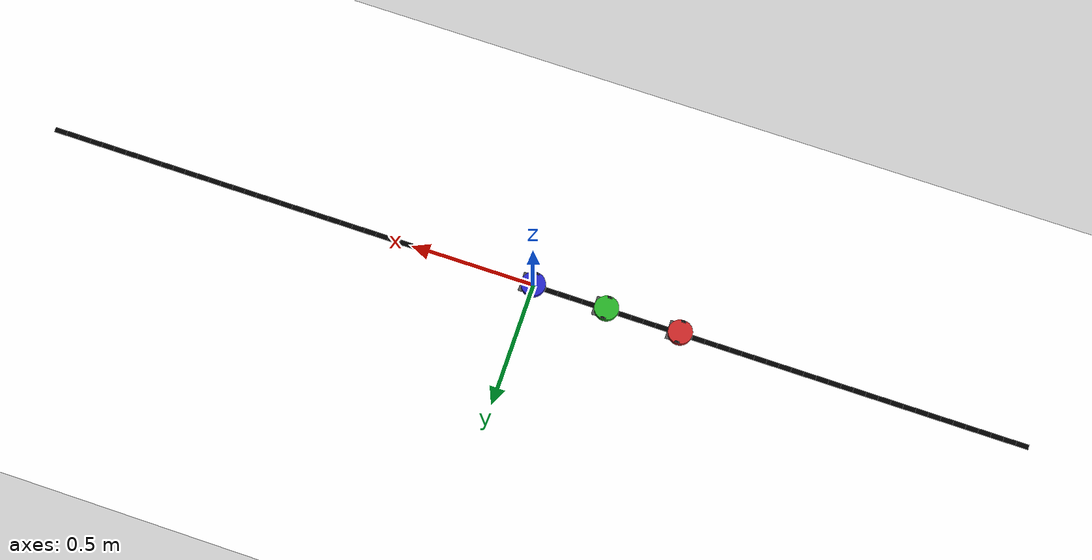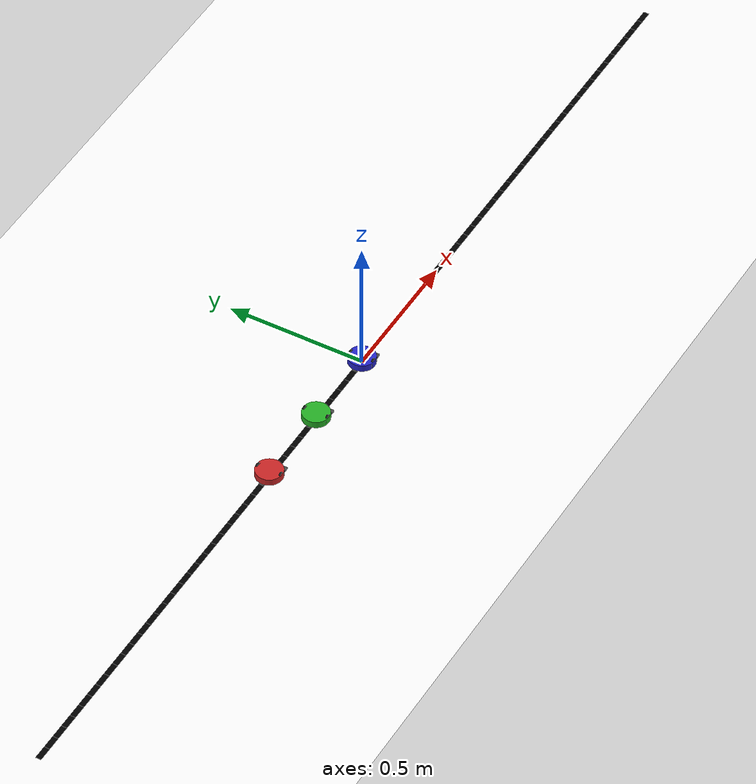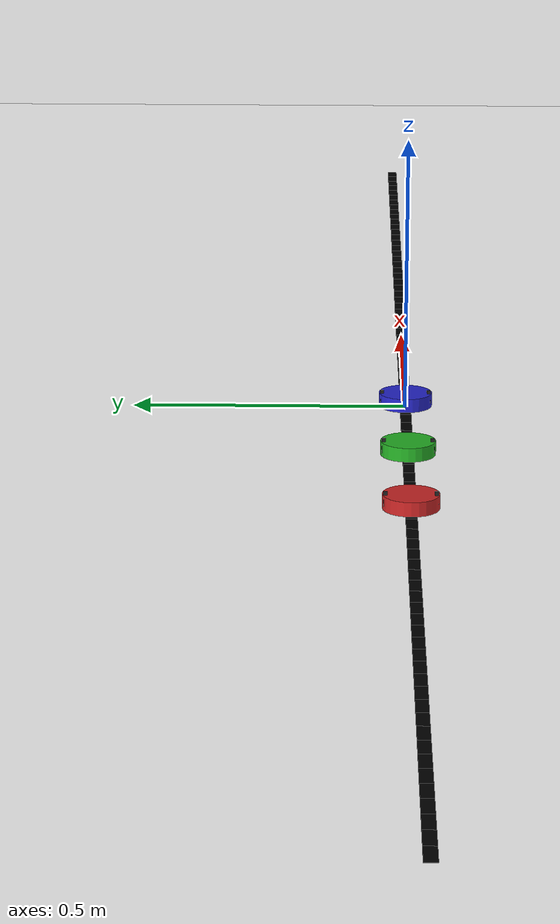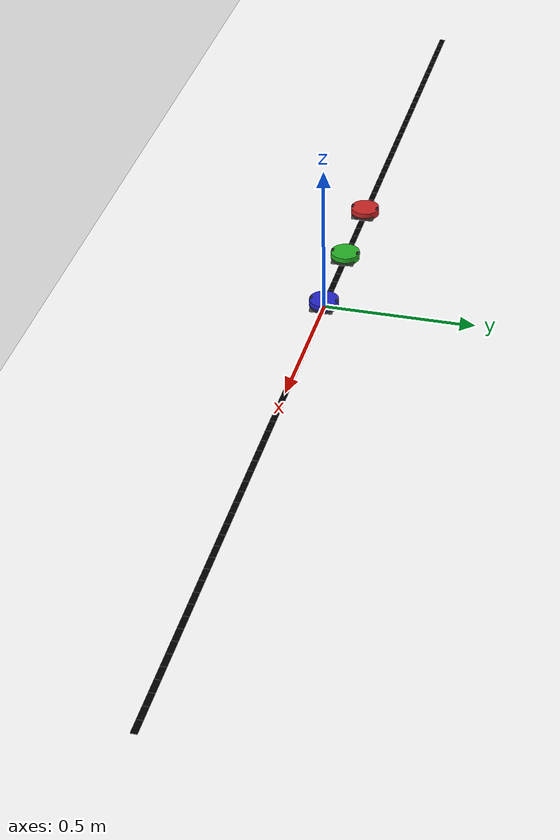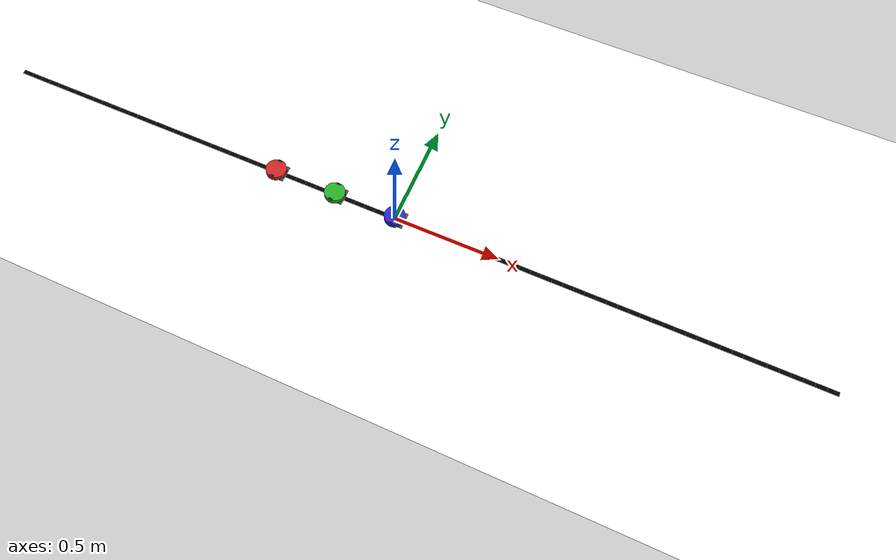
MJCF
<mujoco model="platooning_pololu">

  <compiler angle="radian" inertiafromgeom="true"/>

  <option timestep="0.002"
          gravity="0 0 -9.81"
          integrator="RK4"
          cone="elliptic"/>

  <default>
    <joint damping="0.001" frictionloss="0.0005"/>
    <geom condim="4" friction="0.8 0.01 0.01" solref="0.004 1" solimp="0.99 0.999 0.0001"/>
  </default>

  <!-- ───────── ASSETS ───────── -->
  <asset>
    <material name="ground_mat"  rgba="1 1 1 1" reflectance="0.15"/>
    <material name="line_mat"    rgba="0 0 0 1"/>
    <material name="chassis1"    rgba="0.15 0.15 0.8 1"/>   <!-- blue  — leader   -->
    <material name="chassis2"    rgba="0.15 0.7  0.15 1"/>  <!-- green — follower1 -->
    <material name="chassis3"    rgba="0.8  0.15 0.15 1"/>  <!-- red   — follower2 -->
    <material name="wheel_mat"   rgba="0.1  0.1  0.1  1"/>
    <material name="caster_mat"  rgba="0.7  0.7  0.7  1"/>
    <material name="bumper_mat"  rgba="0.2  0.2  0.2  0.8"/>
  </asset>

  <!-- ───────── WORLD ───────── -->
  <worldbody>

    <geom name="floor" type="plane" size="5 5 0.1"
          material="ground_mat" friction="0.8 0.01 0.01" condim="3"/>

    <!-- ── LIGHTS ─────────────────────────────────────────────────────── -->
    <!-- Directional sun-like light from above-front -->
    <light name="sun" directional="true" pos="0 0 3"
           dir="0.2 -0.3 -1" diffuse="0.8 0.8 0.8" specular="0.2 0.2 0.2"
           castshadow="true"/>
    <!-- Ambient fill light from above to avoid harsh shadows -->
    <light name="fill" directional="true" pos="0 0 2"
           dir="-0.1 0.2 -1" diffuse="0.4 0.4 0.4" specular="0 0 0"
           castshadow="false"/>

    <geom type="box" size="0.0250 0.0100 0.0005" pos="-1.9750 0.0 0.0005" material="line_mat" contype="0" conaffinity="0"/>
    <geom type="box" size="0.0250 0.0100 0.0005" pos="-1.9250 0.0 0.0005" material="line_mat" contype="0" conaffinity="0"/>
    <geom type="box" size="0.0250 0.0100 0.0005" pos="-1.8750 0.0 0.0005" material="line_mat" contype="0" conaffinity="0"/>
    <geom type="box" size="0.0250 0.0100 0.0005" pos="-1.8250 0.0 0.0005" material="line_mat" contype="0" conaffinity="0"/>
    <geom type="box" size="0.0250 0.0100 0.0005" pos="-1.7750 0.0 0.0005" material="line_mat" contype="0" conaffinity="0"/>
    <geom type="box" size="0.0250 0.0100 0.0005" pos="-1.7250 0.0 0.0005" material="line_mat" contype="0" conaffinity="0"/>
    <geom type="box" size="0.0250 0.0100 0.0005" pos="-1.6750 0.0 0.0005" material="line_mat" contype="0" conaffinity="0"/>
    <geom type="box" size="0.0250 0.0100 0.0005" pos="-1.6250 0.0 0.0005" material="line_mat" contype="0" conaffinity="0"/>
    <geom type="box" size="0.0250 0.0100 0.0005" pos="-1.5750 0.0 0.0005" material="line_mat" contype="0" conaffinity="0"/>
    <geom type="box" size="0.0250 0.0100 0.0005" pos="-1.5250 0.0 0.0005" material="line_mat" contype="0" conaffinity="0"/>
    <geom type="box" size="0.0250 0.0100 0.0005" pos="-1.4750 0.0 0.0005" material="line_mat" contype="0" conaffinity="0"/>
    <geom type="box" size="0.0250 0.0100 0.0005" pos="-1.4250 0.0 0.0005" material="line_mat" contype="0" conaffinity="0"/>
    <geom type="box" size="0.0250 0.0100 0.0005" pos="-1.3750 0.0 0.0005" material="line_mat" contype="0" conaffinity="0"/>
    <geom type="box" size="0.0250 0.0100 0.0005" pos="-1.3250 0.0 0.0005" material="line_mat" contype="0" conaffinity="0"/>
    <geom type="box" size="0.0250 0.0100 0.0005" pos="-1.2750 0.0 0.0005" material="line_mat" contype="0" conaffinity="0"/>
    <geom type="box" size="0.0250 0.0100 0.0005" pos="-1.2250 0.0 0.0005" material="line_mat" contype="0" conaffinity="0"/>
    <geom type="box" size="0.0250 0.0100 0.0005" pos="-1.1750 0.0 0.0005" material="line_mat" contype="0" conaffinity="0"/>
    <geom type="box" size="0.0250 0.0100 0.0005" pos="-1.1250 0.0 0.0005" material="line_mat" contype="0" conaffinity="0"/>
    <geom type="box" size="0.0250 0.0100 0.0005" pos="-1.0750 0.0 0.0005" material="line_mat" contype="0" conaffinity="0"/>
    <geom type="box" size="0.0250 0.0100 0.0005" pos="-1.0250 0.0 0.0005" material="line_mat" contype="0" conaffinity="0"/>
    <geom type="box" size="0.0250 0.0100 0.0005" pos="-0.9750 0.0 0.0005" material="line_mat" contype="0" conaffinity="0"/>
    <geom type="box" size="0.0250 0.0100 0.0005" pos="-0.9250 0.0 0.0005" material="line_mat" contype="0" conaffinity="0"/>
    <geom type="box" size="0.0250 0.0100 0.0005" pos="-0.8750 0.0 0.0005" material="line_mat" contype="0" conaffinity="0"/>
    <geom type="box" size="0.0250 0.0100 0.0005" pos="-0.8250 0.0 0.0005" material="line_mat" contype="0" conaffinity="0"/>
    <geom type="box" size="0.0250 0.0100 0.0005" pos="-0.7750 0.0 0.0005" material="line_mat" contype="0" conaffinity="0"/>
    <geom type="box" size="0.0250 0.0100 0.0005" pos="-0.7250 0.0 0.0005" material="line_mat" contype="0" conaffinity="0"/>
    <geom type="box" size="0.0250 0.0100 0.0005" pos="-0.6750 0.0 0.0005" material="line_mat" contype="0" conaffinity="0"/>
    <geom type="box" size="0.0250 0.0100 0.0005" pos="-0.6250 0.0 0.0005" material="line_mat" contype="0" conaffinity="0"/>
    <geom type="box" size="0.0250 0.0100 0.0005" pos="-0.5750 0.0 0.0005" material="line_mat" contype="0" conaffinity="0"/>
    <geom type="box" size="0.0250 0.0100 0.0005" pos="-0.5250 0.0 0.0005" material="line_mat" contype="0" conaffinity="0"/>
    <geom type="box" size="0.0250 0.0100 0.0005" pos="-0.4750 0.0 0.0005" material="line_mat" contype="0" conaffinity="0"/>
    <geom type="box" size="0.0250 0.0100 0.0005" pos="-0.4250 0.0 0.0005" material="line_mat" contype="0" conaffinity="0"/>
    <geom type="box" size="0.0250 0.0100 0.0005" pos="-0.3750 0.0 0.0005" material="line_mat" contype="0" conaffinity="0"/>
    <geom type="box" size="0.0250 0.0100 0.0005" pos="-0.3250 0.0 0.0005" material="line_mat" contype="0" conaffinity="0"/>
    <geom type="box" size="0.0250 0.0100 0.0005" pos="-0.2750 0.0 0.0005" material="line_mat" contype="0" conaffinity="0"/>
    <geom type="box" size="0.0250 0.0100 0.0005" pos="-0.2250 0.0 0.0005" material="line_mat" contype="0" conaffinity="0"/>
    <geom type="box" size="0.0250 0.0100 0.0005" pos="-0.1750 0.0 0.0005" material="line_mat" contype="0" conaffinity="0"/>
    <geom type="box" size="0.0250 0.0100 0.0005" pos="-0.1250 0.0 0.0005" material="line_mat" contype="0" conaffinity="0"/>
    <geom type="box" size="0.0250 0.0100 0.0005" pos="-0.0750 0.0 0.0005" material="line_mat" contype="0" conaffinity="0"/>
    <geom type="box" size="0.0250 0.0100 0.0005" pos="-0.0250 0.0 0.0005" material="line_mat" contype="0" conaffinity="0"/>
    <geom type="box" size="0.0250 0.0100 0.0005" pos="0.0250 0.0 0.0005" material="line_mat" contype="0" conaffinity="0"/>
    <geom type="box" size="0.0250 0.0100 0.0005" pos="0.0750 0.0 0.0005" material="line_mat" contype="0" conaffinity="0"/>
    <geom type="box" size="0.0250 0.0100 0.0005" pos="0.1250 0.0 0.0005" material="line_mat" contype="0" conaffinity="0"/>
    <geom type="box" size="0.0250 0.0100 0.0005" pos="0.1750 0.0 0.0005" material="line_mat" contype="0" conaffinity="0"/>
    <geom type="box" size="0.0250 0.0100 0.0005" pos="0.2250 0.0 0.0005" material="line_mat" contype="0" conaffinity="0"/>
    <geom type="box" size="0.0250 0.0100 0.0005" pos="0.2750 0.0 0.0005" material="line_mat" contype="0" conaffinity="0"/>
    <geom type="box" size="0.0250 0.0100 0.0005" pos="0.3250 0.0 0.0005" material="line_mat" contype="0" conaffinity="0"/>
    <geom type="box" size="0.0250 0.0100 0.0005" pos="0.3750 0.0 0.0005" material="line_mat" contype="0" conaffinity="0"/>
    <geom type="box" size="0.0250 0.0100 0.0005" pos="0.4250 0.0 0.0005" material="line_mat" contype="0" conaffinity="0"/>
    <geom type="box" size="0.0250 0.0100 0.0005" pos="0.4750 0.0 0.0005" material="line_mat" contype="0" conaffinity="0"/>
    <geom type="box" size="0.0250 0.0100 0.0005" pos="0.5250 0.0 0.0005" material="line_mat" contype="0" conaffinity="0"/>
    <geom type="box" size="0.0250 0.0100 0.0005" pos="0.5750 0.0 0.0005" material="line_mat" contype="0" conaffinity="0"/>
    <geom type="box" size="0.0250 0.0100 0.0005" pos="0.6250 0.0 0.0005" material="line_mat" contype="0" conaffinity="0"/>
    <geom type="box" size="0.0250 0.0100 0.0005" pos="0.6750 0.0 0.0005" material="line_mat" contype="0" conaffinity="0"/>
    <geom type="box" size="0.0250 0.0100 0.0005" pos="0.7250 0.0 0.0005" material="line_mat" contype="0" conaffinity="0"/>
    <geom type="box" size="0.0250 0.0100 0.0005" pos="0.7750 0.0 0.0005" material="line_mat" contype="0" conaffinity="0"/>
    <geom type="box" size="0.0250 0.0100 0.0005" pos="0.8250 0.0 0.0005" material="line_mat" contype="0" conaffinity="0"/>
    <geom type="box" size="0.0250 0.0100 0.0005" pos="0.8750 0.0 0.0005" material="line_mat" contype="0" conaffinity="0"/>
    <geom type="box" size="0.0250 0.0100 0.0005" pos="0.9250 0.0 0.0005" material="line_mat" contype="0" conaffinity="0"/>
    <geom type="box" size="0.0250 0.0100 0.0005" pos="0.9750 0.0 0.0005" material="line_mat" contype="0" conaffinity="0"/>
    <geom type="box" size="0.0250 0.0100 0.0005" pos="1.0250 0.0 0.0005" material="line_mat" contype="0" conaffinity="0"/>
    <geom type="box" size="0.0250 0.0100 0.0005" pos="1.0750 0.0 0.0005" material="line_mat" contype="0" conaffinity="0"/>
    <geom type="box" size="0.0250 0.0100 0.0005" pos="1.1250 0.0 0.0005" material="line_mat" contype="0" conaffinity="0"/>
    <geom type="box" size="0.0250 0.0100 0.0005" pos="1.1750 0.0 0.0005" material="line_mat" contype="0" conaffinity="0"/>
    <geom type="box" size="0.0250 0.0100 0.0005" pos="1.2250 0.0 0.0005" material="line_mat" contype="0" conaffinity="0"/>
    <geom type="box" size="0.0250 0.0100 0.0005" pos="1.2750 0.0 0.0005" material="line_mat" contype="0" conaffinity="0"/>
    <geom type="box" size="0.0250 0.0100 0.0005" pos="1.3250 0.0 0.0005" material="line_mat" contype="0" conaffinity="0"/>
    <geom type="box" size="0.0250 0.0100 0.0005" pos="1.3750 0.0 0.0005" material="line_mat" contype="0" conaffinity="0"/>
    <geom type="box" size="0.0250 0.0100 0.0005" pos="1.4250 0.0 0.0005" material="line_mat" contype="0" conaffinity="0"/>
    <geom type="box" size="0.0250 0.0100 0.0005" pos="1.4750 0.0 0.0005" material="line_mat" contype="0" conaffinity="0"/>
    <geom type="box" size="0.0250 0.0100 0.0005" pos="1.5250 0.0 0.0005" material="line_mat" contype="0" conaffinity="0"/>
    <geom type="box" size="0.0250 0.0100 0.0005" pos="1.5750 0.0 0.0005" material="line_mat" contype="0" conaffinity="0"/>
    <geom type="box" size="0.0250 0.0100 0.0005" pos="1.6250 0.0 0.0005" material="line_mat" contype="0" conaffinity="0"/>
    <geom type="box" size="0.0250 0.0100 0.0005" pos="1.6750 0.0 0.0005" material="line_mat" contype="0" conaffinity="0"/>
    <geom type="box" size="0.0250 0.0100 0.0005" pos="1.7250 0.0 0.0005" material="line_mat" contype="0" conaffinity="0"/>
    <geom type="box" size="0.0250 0.0100 0.0005" pos="1.7750 0.0 0.0005" material="line_mat" contype="0" conaffinity="0"/>
    <geom type="box" size="0.0250 0.0100 0.0005" pos="1.8250 0.0 0.0005" material="line_mat" contype="0" conaffinity="0"/>
    <geom type="box" size="0.0250 0.0100 0.0005" pos="1.8750 0.0 0.0005" material="line_mat" contype="0" conaffinity="0"/>
    <geom type="box" size="0.0250 0.0100 0.0005" pos="1.9250 0.0 0.0005" material="line_mat" contype="0" conaffinity="0"/>
    <geom type="box" size="0.0250 0.0100 0.0005" pos="1.9750 0.0 0.0005" material="line_mat" contype="0" conaffinity="0"/>

    <!-- ════════════════════════════════════════════
         CAR 1 — Leader (blue), starts at x=0
         ════════════════════════════════════════════ -->
    <body name="car1" pos="0.0 0 0.016">
      <joint name="car1_slide" type="slide" axis="1 0 0"
             damping="0.5" frictionloss="0.1"/>
      <joint name="car1_hinge" type="hinge" axis="0 0 1"
             damping="0.05" frictionloss="0.01"/>

      <site name="imu1" pos="0 0 0.005" size="0.002"/>

      <geom name="chassis1_geom" type="cylinder"
            size="0.0485 0.0125" mass="0.085" material="chassis1"/>

      <geom name="bumper1" type="box"
            pos="0.040 0 -0.008" size="0.010 0.038 0.004"
            mass="0.004" material="bumper_mat" contype="1" conaffinity="1"/>

      <!-- Visual wheels (no drive joints — motion comes from slide/hinge) -->
      <body name="car1_lw" pos="0 0.04275 0.0">
        <geom type="cylinder" size="0.016 0.0035" mass="0.005"
              euler="1.5708 0 0" material="wheel_mat"
              friction="1.0 0.01 0.01" condim="4"/>
      </body>
      <body name="car1_rw" pos="0 -0.04275 0.0">
        <geom type="cylinder" size="0.016 0.0035" mass="0.005"
              euler="1.5708 0 0" material="wheel_mat"
              friction="1.0 0.01 0.01" condim="4"/>
      </body>
      <body name="car1_caster" pos="-0.033 0 -0.00965">
        <geom type="sphere" size="0.00635" mass="0.005"
              material="caster_mat" friction="0.01 0.005 0.005" condim="1"/>
      </body>
    </body>

    <!-- ════════════════════════════════════════════
         CAR 2 — Follower 1 (green), starts at x=-0.3
         ════════════════════════════════════════════ -->
    <body name="car2" pos="-0.3 0 0.016">
      <joint name="car2_slide" type="slide" axis="1 0 0"
             damping="0.5" frictionloss="0.1"/>
      <joint name="car2_hinge" type="hinge" axis="0 0 1"
             damping="0.05" frictionloss="0.01"/>

      <site name="imu2" pos="0 0 0.005" size="0.002"/>

      <geom name="chassis2_geom" type="cylinder"
            size="0.0485 0.0125" mass="0.085" material="chassis2"/>

      <geom name="bumper2" type="box"
            pos="0.040 0 -0.008" size="0.010 0.038 0.004"
            mass="0.004" material="bumper_mat" contype="1" conaffinity="1"/>

      <body name="car2_lw" pos="0 0.04275 0.0">
        <geom type="cylinder" size="0.016 0.0035" mass="0.005"
              euler="1.5708 0 0" material="wheel_mat"
              friction="1.0 0.01 0.01" condim="4"/>
      </body>
      <body name="car2_rw" pos="0 -0.04275 0.0">
        <geom type="cylinder" size="0.016 0.0035" mass="0.005"
              euler="1.5708 0 0" material="wheel_mat"
              friction="1.0 0.01 0.01" condim="4"/>
      </body>
      <body name="car2_caster" pos="-0.033 0 -0.00965">
        <geom type="sphere" size="0.00635" mass="0.005"
              material="caster_mat" friction="0.01 0.005 0.005" condim="1"/>
      </body>
    </body>

    <!-- ════════════════════════════════════════════
         CAR 3 — Follower 2 (red), starts at x=-0.6
         ════════════════════════════════════════════ -->
    <body name="car3" pos="-0.6 0 0.016">
      <joint name="car3_slide" type="slide" axis="1 0 0"
             damping="0.5" frictionloss="0.1"/>
      <joint name="car3_hinge" type="hinge" axis="0 0 1"
             damping="0.05" frictionloss="0.01"/>

      <site name="imu3" pos="0 0 0.005" size="0.002"/>

      <geom name="chassis3_geom" type="cylinder"
            size="0.0485 0.0125" mass="0.085" material="chassis3"/>

      <geom name="bumper3" type="box"
            pos="0.040 0 -0.008" size="0.010 0.038 0.004"
            mass="0.004" material="bumper_mat" contype="1" conaffinity="1"/>

      <body name="car3_lw" pos="0 0.04275 0.0">
        <geom type="cylinder" size="0.016 0.0035" mass="0.005"
              euler="1.5708 0 0" material="wheel_mat"
              friction="1.0 0.01 0.01" condim="4"/>
      </body>
      <body name="car3_rw" pos="0 -0.04275 0.0">
        <geom type="cylinder" size="0.016 0.0035" mass="0.005"
              euler="1.5708 0 0" material="wheel_mat"
              friction="1.0 0.01 0.01" condim="4"/>
      </body>
      <body name="car3_caster" pos="-0.033 0 -0.00965">
        <geom type="sphere" size="0.00635" mass="0.005"
              material="caster_mat" friction="0.01 0.005 0.005" condim="1"/>
      </body>
    </body>

  </worldbody>

  <!-- ───────── ACTUATORS ───────── -->
  <actuator>
    <!-- Car 1 -->
    <velocity name="forward1" joint="car1_slide" kv="2.0" gear="0.3"
              ctrllimited="true" ctrlrange="-1 1"/>
    <velocity name="turn1"    joint="car1_hinge" kv="0.5" gear="3.5"
              ctrllimited="true" ctrlrange="-1 1"/>

    <!-- Car 2 -->
    <velocity name="forward2" joint="car2_slide" kv="2.0" gear="0.3"
              ctrllimited="true" ctrlrange="-1 1"/>
    <velocity name="turn2"    joint="car2_hinge" kv="0.5" gear="3.5"
              ctrllimited="true" ctrlrange="-1 1"/>

    <!-- Car 3 -->
    <velocity name="forward3" joint="car3_slide" kv="2.0" gear="0.3"
              ctrllimited="true" ctrlrange="-1 1"/>
    <velocity name="turn3"    joint="car3_hinge" kv="0.5" gear="3.5"
              ctrllimited="true" ctrlrange="-1 1"/>
  </actuator>

  <!-- ───────── SENSORS ───────── -->
  <sensor>
    <!-- Car 1 -->
    <subtreecom  name="pos_car1"    body="car1"/>
    <velocimeter name="linvel_car1" site="imu1"/>

    <!-- Car 2 -->
    <subtreecom  name="pos_car2"    body="car2"/>
    <velocimeter name="linvel_car2" site="imu2"/>

    <!-- Car 3 -->
    <subtreecom  name="pos_car3"    body="car3"/>
    <velocimeter name="linvel_car3" site="imu3"/>
  </sensor>

</mujoco>
